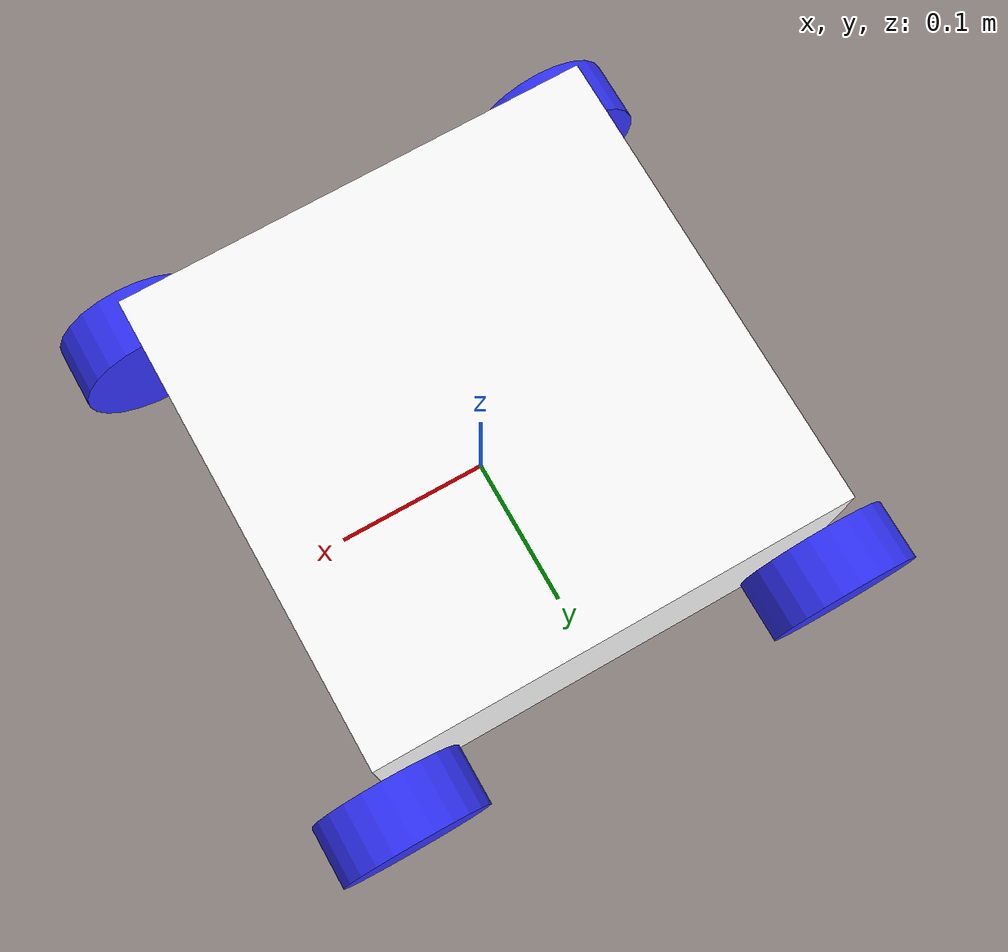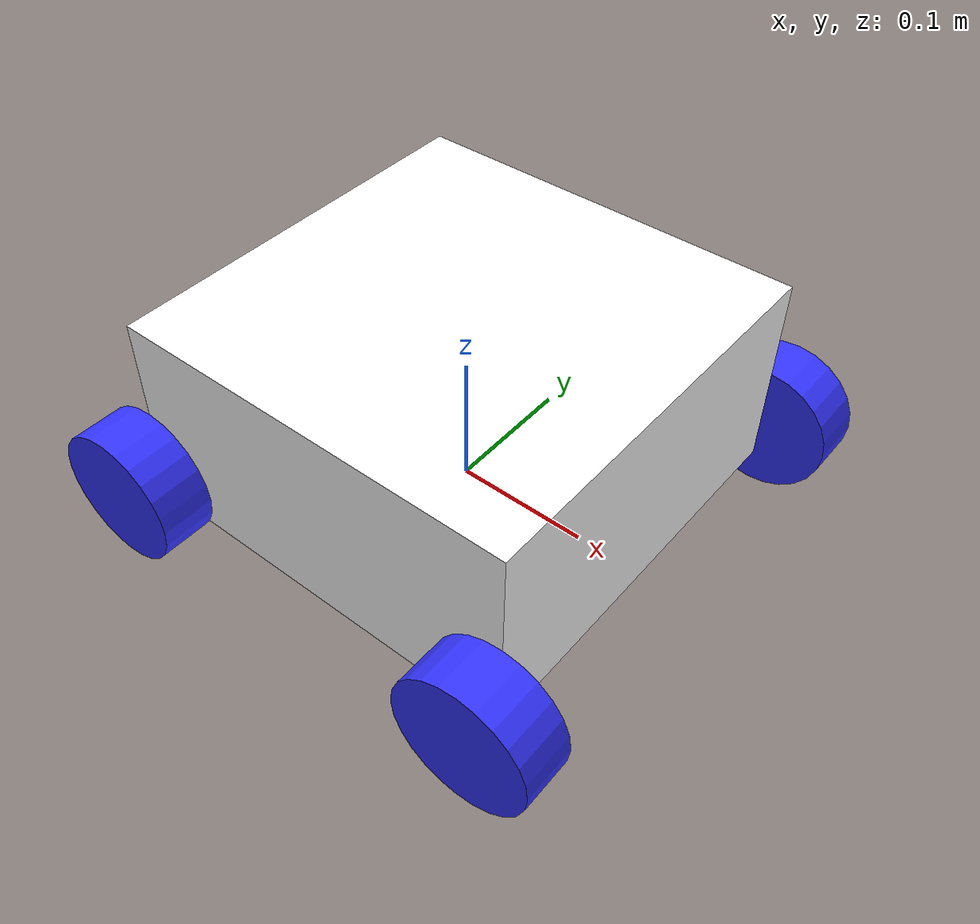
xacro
<?xml version="1.0"?>
<robot xmlns:xacro="http://www.ros.org/xacro">

  <xacro:include filename="mecanum_inertial_macros.xacro"/>

  <!-- Define Materials -->
  <material name="white">
    <color rgba="1 1 1 1"/>
  </material>

  <material name="blue">
    <color rgba="0.2 0.2 1 1"/>
  </material>

  <!-- BASE LINK -->
  <link name="base_link"/>

  <!-- BASE_FOOTPRINT LINK -->
  <joint name="base_footprint_joint" type="fixed">
    <parent link="base_link"/>
    <child link="base_footprint"/>
    <origin xyz="0 0 0" rpy="0 0 0"/>
  </joint>
  <link name="base_footprint"/>

  <!-- CHASSIS -->
  <joint name="chassis_joint" type="fixed">
    <parent link="base_link"/>
    <child link="chassis"/>
    <origin xyz="0 0 0"/>
  </joint>

  <link name="chassis">
    <visual>
      <origin xyz="0 0 0.075"/>
      <geometry>
        <box size="0.3 0.3 0.15"/>
      </geometry>
      <material name="white"/>
    </visual>
    <collision>
      <origin xyz="0 0 0.075"/>
      <geometry>
        <box size="0.3 0.3 0.15"/>
      </geometry>
    </collision>
    <xacro:inertial_box mass="4.0" x="0.3" y="0.3" z="0.15">
      <origin xyz="0 0 0.075" rpy="0 0 0"/>
    </xacro:inertial_box>
  </link>

  <!-- FRONT LEFT WHEEL -->
  <joint name="front_left_wheel_joint" type="continuous">
    <parent link="base_link"/>
    <child link="front_left_wheel"/>
    <origin xyz="0.15 0.17 0.025" rpy="-1.5708 0 0"/>
    <axis xyz="0 0 1"/>
  </joint>

  <link name="front_left_wheel">
    <visual>
      <geometry>
        <cylinder radius="0.05" length="0.04"/>
      </geometry>
      <material name="blue"/>
    </visual>
    <collision>
      <geometry>
        <cylinder radius="0.05" length="0.04"/>
      </geometry>
      <!-- ADD FRICTION BLOCK -->
      <surface>
        <friction>
          <ode>
            <mu>1.0</mu>
            <mu2>0.0</mu2>
            <fdir1>1 -1 0</fdir1>
          </ode>
        </friction>
      </surface>

    </collision>
    <xacro:inertial_cylinder mass="1" length="0.04" radius="0.05">
      <origin xyz="0 0 0" rpy="0 0 0"/>
    </xacro:inertial_cylinder>
  </link>

  <!-- FRONT RIGHT WHEEL -->
  <joint name="front_right_wheel_joint" type="continuous">
    <parent link="base_link"/>
    <child link="front_right_wheel"/>
    <origin xyz="0.15 -0.17 0.025" rpy="-1.5708 0 0"/>
    <axis xyz="0 0 1"/>
  </joint>

  <link name="front_right_wheel">
    <visual>
      <geometry>
        <cylinder radius="0.05" length="0.04"/>
      </geometry>
      <material name="blue"/>
    </visual>
    <collision>
      <geometry>
        <cylinder radius="0.05" length="0.04"/>
      </geometry>
      <!-- ADD FRICTION BLOCK -->
      <surface>
        <friction>
          <ode>
            <mu>1.0</mu>
            <mu2>0.0</mu2>
            <fdir1>1 1 0</fdir1>
          </ode>
        </friction>
      </surface>
    </collision>
    <xacro:inertial_cylinder mass="1" length="0.04" radius="0.05">
      <origin xyz="0 0 0" rpy="0 0 0"/>
    </xacro:inertial_cylinder>
  </link>

  <!-- REAR LEFT WHEEL -->
  <joint name="rear_left_wheel_joint" type="continuous">
    <parent link="base_link"/>
    <child link="rear_left_wheel"/>
    <origin xyz="-0.15 0.17 0.025" rpy="-1.5708 0 0"/>
    <axis xyz="0 0 1"/>
  </joint>

  <link name="rear_left_wheel">
    <visual>
      <geometry>
        <cylinder radius="0.05" length="0.04"/>
      </geometry>
      <material name="blue"/>
    </visual>
    <collision>
      <geometry>
        <cylinder radius="0.05" length="0.04"/>
      </geometry>
      <!-- ADD FRICTION BLOCK -->
      <surface>
        <friction>
          <ode>
            <mu>1.0</mu>
            <mu2>0.0</mu2>
            <fdir1>1 1 0</fdir1>
          </ode>
        </friction>
      </surface>
    </collision>
    <xacro:inertial_cylinder mass="1" length="0.04" radius="0.05">
      <origin xyz="0 0 0" rpy="0 0 0"/>
    </xacro:inertial_cylinder>
  </link>

  <!-- REAR RIGHT WHEEL -->
  <joint name="rear_right_wheel_joint" type="continuous">
    <parent link="base_link"/>
    <child link="rear_right_wheel"/>
    <origin xyz="-0.15 -0.17 0.025" rpy="-1.5708 0 0"/>
    <axis xyz="0 0 1"/>
  </joint>

  <link name="rear_right_wheel">
    <visual>
      <geometry>
        <cylinder radius="0.05" length="0.04"/>
      </geometry>
      <material name="blue"/>
    </visual>
    <collision>
      <geometry>
        <cylinder radius="0.05" length="0.04"/>
      </geometry>
      <!-- ADD FRICTION BLOCK -->
      <surface>
        <friction>
          <ode>
            <mu>1.0</mu>
            <mu2>0.0</mu2>
            <fdir1>1 -1 0</fdir1>
          </ode>
        </friction>
      </surface>
    </collision>
    <xacro:inertial_cylinder mass="1" length="0.04" radius="0.05">
      <origin xyz="0 0 0" rpy="0 0 0"/>
    </xacro:inertial_cylinder>
  </link>

</robot>

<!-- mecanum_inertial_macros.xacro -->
<robot xmlns:xacro="http://www.ros.org/xacro" >

    <!-- Macro to define inertial properties for a box -->
    <xacro:macro name="inertial_box" params="mass x y z *origin">
        <inertial>
            <xacro:insert_block name="origin"/>
            <mass value="${mass}" />
            <inertia ixx="${(1/12) * mass * (y*y+z*z)}" ixy="0.0" ixz="0.0"
                    iyy="${(1/12) * mass * (x*x+z*z)}" iyz="0.0"
                    izz="${(1/12) * mass * (x*x+y*y)}" />
        </inertial>
    </xacro:macro>

    <!-- Macro to define inertial properties for a cylinder -->
    <xacro:macro name="inertial_cylinder" params="mass length radius *origin">
        <inertial>
            <!-- Ensure an origin is always included -->
            <xacro:if value="${origin}">
                <xacro:insert_block name="origin"/>
            </xacro:if>
            <xacro:unless value="${origin}">
                <origin xyz="0 0 0" rpy="0 0 0"/>
            </xacro:unless>
            <mass value="${mass}" />
            <inertia ixx="${(1/12) * mass * (3*radius*radius + length*length)}" ixy="0.0" ixz="0.0"
                    iyy="${(1/12) * mass * (3*radius*radius + length*length)}" iyz="0.0"
                    izz="${(1/2) * mass * (radius*radius)}" />
        </inertial>
    </xacro:macro>

</robot>
